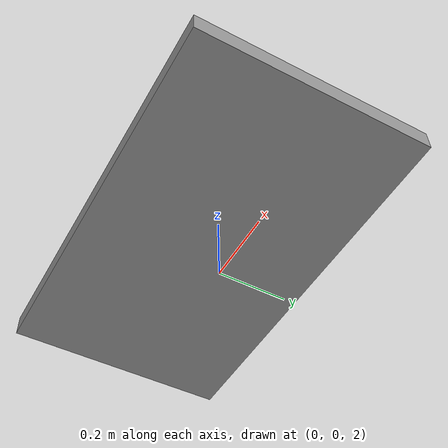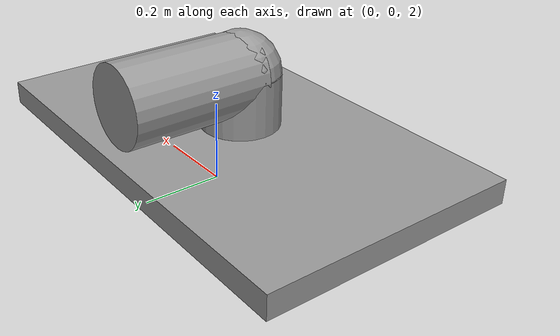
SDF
<?xml version='1.0'?>
<sdf version='1.7'>
  <model name='my_vacuum'>
    <link name='link'>
      <inertial>
        <mass>1</mass>
        <inertia>
          <ixx>0.166667</ixx>
          <ixy>0</ixy>
          <ixz>0</ixz>
          <iyy>0.166667</iyy>
          <iyz>0</iyz>
          <izz>0.166667</izz>
        </inertia>
        <pose>0 0 0 0 -0 0</pose>
      </inertial>
      <self_collide>0</self_collide>
      <enable_wind>0</enable_wind>
      <kinematic>0</kinematic>
      <pose>0 -0.048228 0 0 -0 0</pose>
      <gravity>1</gravity>
      <visual name='visual'>
        <geometry>
          <box>
            <size>1.1 0.65 0.06</size>
          </box>
        </geometry>
        <material>
          <script>
            <name>Gazebo/Grey</name>
            <uri>file://media/materials/scripts/gazebo.material</uri>
          </script>
          <shader type='pixel'>
            <normal_map>__default__</normal_map>
          </shader>
          <ambient>0.4 0.4 0.4 1</ambient>
          <diffuse>0.4 0.4 0.4 1</diffuse>
          <specular>0.01 0.01 0.01 1</specular>
          <emissive>0 0 0 1</emissive>
        </material>
        <pose>0 0 2.1 0 -0 0</pose>
        <transparency>0</transparency>
        <cast_shadows>1</cast_shadows>
      </visual>
      <collision name='collision'>
        <laser_retro>0</laser_retro>
        <max_contacts>10</max_contacts>
        <pose>0 0 2.1 0 -0 0</pose>
        <geometry>
          <box>
            <size>1.1 0.65 0.06</size>
          </box>
        </geometry>
        <surface>
          <friction>
            <ode>
              <mu>1</mu>
              <mu2>1</mu2>
              <fdir1>0 0 0</fdir1>
              <slip1>0</slip1>
              <slip2>0</slip2>
            </ode>
            <torsional>
              <coefficient>1</coefficient>
              <patch_radius>0</patch_radius>
              <surface_radius>0</surface_radius>
              <use_patch_radius>1</use_patch_radius>
              <ode>
                <slip>0</slip>
              </ode>
            </torsional>
          </friction>
          <bounce>
            <restitution_coefficient>0</restitution_coefficient>
            <threshold>1e+06</threshold>
          </bounce>
          <contact>
            <collide_without_contact>0</collide_without_contact>
            <collide_without_contact_bitmask>1</collide_without_contact_bitmask>
            <collide_bitmask>1</collide_bitmask>
            <ode>
              <soft_cfm>0</soft_cfm>
              <soft_erp>0.2</soft_erp>
              <kp>1e+13</kp>
              <kd>1</kd>
              <max_vel>0.01</max_vel>
              <min_depth>0</min_depth>
            </ode>
            <bullet>
              <split_impulse>1</split_impulse>
              <split_impulse_penetration_threshold>-0.01</split_impulse_penetration_threshold>
              <soft_cfm>0</soft_cfm>
              <soft_erp>0.2</soft_erp>
              <kp>1e+13</kp>
              <kd>1</kd>
            </bullet>
          </contact>
        </surface>
      </collision>
    </link>
    <link name='link_1'>
      <inertial>
        <mass>1</mass>
        <inertia>
          <ixx>0.145833</ixx>
          <ixy>0</ixy>
          <ixz>0</ixz>
          <iyy>0.145833</iyy>
          <iyz>0</iyz>
          <izz>0.125</izz>
        </inertia>
        <pose>0 0 0 0 -0 0</pose>
      </inertial>
      <pose>0.003402 -0.072362 2.63858 0 -0 0</pose>
      <gravity>1</gravity>
      <self_collide>0</self_collide>
      <kinematic>0</kinematic>
      <enable_wind>0</enable_wind>
      <visual name='visual'>
        <pose>0 0 -0.45 0 -0 0</pose>
        <geometry>
          <cylinder>
            <radius>0.1</radius>
            <length>0.15</length>
          </cylinder>
        </geometry>
        <material>
          <lighting>1</lighting>
          <script>
            <uri>file://media/materials/scripts/gazebo.material</uri>
            <name>Gazebo/Grey</name>
          </script>
          <shader type='pixel'>
            <normal_map>__default__</normal_map>
          </shader>
          <ambient>0.4 0.4 0.4 1</ambient>
          <diffuse>0.4 0.4 0.4 1</diffuse>
          <specular>0.01 0.01 0.01 1</specular>
          <emissive>0 0 0 1</emissive>
        </material>
        <transparency>0</transparency>
        <cast_shadows>1</cast_shadows>
      </visual>
      <collision name='collision'>
        <laser_retro>0</laser_retro>
        <max_contacts>10</max_contacts>
        <pose>0 0 -0.45 0 -0 0</pose>
        <geometry>
          <cylinder>
            <radius>0.1</radius>
            <length>0.15</length>
          </cylinder>
        </geometry>
        <surface>
          <friction>
            <ode>
              <mu>1</mu>
              <mu2>1</mu2>
              <fdir1>0 0 0</fdir1>
              <slip1>0</slip1>
              <slip2>0</slip2>
            </ode>
            <torsional>
              <coefficient>1</coefficient>
              <patch_radius>0</patch_radius>
              <surface_radius>0</surface_radius>
              <use_patch_radius>1</use_patch_radius>
              <ode>
                <slip>0</slip>
              </ode>
            </torsional>
          </friction>
          <bounce>
            <restitution_coefficient>0</restitution_coefficient>
            <threshold>1e+06</threshold>
          </bounce>
          <contact>
            <collide_without_contact>0</collide_without_contact>
            <collide_without_contact_bitmask>1</collide_without_contact_bitmask>
            <collide_bitmask>1</collide_bitmask>
            <ode>
              <soft_cfm>0</soft_cfm>
              <soft_erp>0.2</soft_erp>
              <kp>1e+13</kp>
              <kd>1</kd>
              <max_vel>0.01</max_vel>
              <min_depth>0</min_depth>
            </ode>
            <bullet>
              <split_impulse>1</split_impulse>
              <split_impulse_penetration_threshold>-0.01</split_impulse_penetration_threshold>
              <soft_cfm>0</soft_cfm>
              <soft_erp>0.2</soft_erp>
              <kp>1e+13</kp>
              <kd>1</kd>
            </bullet>
          </contact>
        </surface>
      </collision>
    </link>
    <link name='link_1_clone'>
      <inertial>
        <mass>1</mass>
        <inertia>
          <ixx>0.145833</ixx>
          <ixy>0</ixy>
          <ixz>0</ixz>
          <iyy>0.145833</iyy>
          <iyz>0</iyz>
          <izz>0.125</izz>
        </inertia>
        <pose>0 0 0 0 -0 0</pose>
      </inertial>
      <pose>0.004004 0.087852 2.71388 0 -0 0</pose>
      <gravity>1</gravity>
      <self_collide>0</self_collide>
      <kinematic>0</kinematic>
      <enable_wind>0</enable_wind>
      <visual name='visual'>
        <pose>0 0 -0.45 1.5707 -0 0</pose>
        <geometry>
          <cylinder>
            <radius>0.1</radius>
            <length>0.35</length>
          </cylinder>
        </geometry>
        <material>
          <lighting>1</lighting>
          <script>
            <uri>file://media/materials/scripts/gazebo.material</uri>
            <name>Gazebo/Grey</name>
          </script>
          <shader type='pixel'>
            <normal_map>__default__</normal_map>
          </shader>
          <ambient>0.4 0.4 0.4 1</ambient>
          <diffuse>0.4 0.4 0.4 1</diffuse>
          <specular>0.01 0.01 0.01 1</specular>
          <emissive>0 0 0 1</emissive>
        </material>
        <transparency>0</transparency>
        <cast_shadows>1</cast_shadows>
      </visual>
      <collision name='collision'>
        <laser_retro>0</laser_retro>
        <max_contacts>10</max_contacts>
        <pose>0 0 -0.45 1.5707 -0 0</pose>
        <geometry>
          <cylinder>
            <radius>0.1</radius>
            <length>0.35</length>
          </cylinder>
        </geometry>
        <surface>
          <friction>
            <ode>
              <mu>1</mu>
              <mu2>1</mu2>
              <fdir1>0 0 0</fdir1>
              <slip1>0</slip1>
              <slip2>0</slip2>
            </ode>
            <torsional>
              <coefficient>1</coefficient>
              <patch_radius>0</patch_radius>
              <surface_radius>0</surface_radius>
              <use_patch_radius>1</use_patch_radius>
              <ode>
                <slip>0</slip>
              </ode>
            </torsional>
          </friction>
          <bounce>
            <restitution_coefficient>0</restitution_coefficient>
            <threshold>1e+06</threshold>
          </bounce>
          <contact>
            <collide_without_contact>0</collide_without_contact>
            <collide_without_contact_bitmask>1</collide_without_contact_bitmask>
            <collide_bitmask>1</collide_bitmask>
            <ode>
              <soft_cfm>0</soft_cfm>
              <soft_erp>0.2</soft_erp>
              <kp>1e+13</kp>
              <kd>1</kd>
              <max_vel>0.01</max_vel>
              <min_depth>0</min_depth>
            </ode>
            <bullet>
              <split_impulse>1</split_impulse>
              <split_impulse_penetration_threshold>-0.01</split_impulse_penetration_threshold>
              <soft_cfm>0</soft_cfm>
              <soft_erp>0.2</soft_erp>
              <kp>1e+13</kp>
              <kd>1</kd>
            </bullet>
          </contact>
        </surface>
      </collision>
    </link>
    <link name='link_3'>
      <inertial>
        <mass>1</mass>
        <inertia>
          <ixx>0.1</ixx>
          <ixy>0</ixy>
          <ixz>0</ixz>
          <iyy>0.1</iyy>
          <iyz>0</iyz>
          <izz>0.1</izz>
        </inertia>
        <pose>0 0 0 0 -0 0</pose>
      </inertial>
      <pose>0.004236 -0.071859 2.71646 0 -0 0</pose>
      <gravity>1</gravity>
      <self_collide>0</self_collide>
      <kinematic>0</kinematic>
      <enable_wind>0</enable_wind>
      <visual name='visual'>
        <pose>0 0 -0.45 0 -0 0</pose>
        <geometry>
          <sphere>
            <radius>0.1</radius>
          </sphere>
        </geometry>
        <material>
          <lighting>1</lighting>
          <script>
            <uri>file://media/materials/scripts/gazebo.material</uri>
            <name>Gazebo/Grey</name>
          </script>
          <shader type='pixel'>
            <normal_map>__default__</normal_map>
          </shader>
          <ambient>0.4 0.4 0.4 1</ambient>
          <diffuse>0.4 0.4 0.4 1</diffuse>
          <specular>0.01 0.01 0.01 1</specular>
          <emissive>0 0 0 1</emissive>
        </material>
        <transparency>0</transparency>
        <cast_shadows>1</cast_shadows>
      </visual>
      <collision name='collision'>
        <laser_retro>0</laser_retro>
        <max_contacts>10</max_contacts>
        <pose>0 0 -0.45 0 -0 0</pose>
        <geometry>
          <sphere>
            <radius>0.1</radius>
          </sphere>
        </geometry>
        <surface>
          <friction>
            <ode>
              <mu>1</mu>
              <mu2>1</mu2>
              <fdir1>0 0 0</fdir1>
              <slip1>0</slip1>
              <slip2>0</slip2>
            </ode>
            <torsional>
              <coefficient>1</coefficient>
              <patch_radius>0</patch_radius>
              <surface_radius>0</surface_radius>
              <use_patch_radius>1</use_patch_radius>
              <ode>
                <slip>0</slip>
              </ode>
            </torsional>
          </friction>
          <bounce>
            <restitution_coefficient>0</restitution_coefficient>
            <threshold>1e+06</threshold>
          </bounce>
          <contact>
            <collide_without_contact>0</collide_without_contact>
            <collide_without_contact_bitmask>1</collide_without_contact_bitmask>
            <collide_bitmask>1</collide_bitmask>
            <ode>
              <soft_cfm>0</soft_cfm>
              <soft_erp>0.2</soft_erp>
              <kp>1e+13</kp>
              <kd>1</kd>
              <max_vel>0.01</max_vel>
              <min_depth>0</min_depth>
            </ode>
            <bullet>
              <split_impulse>1</split_impulse>
              <split_impulse_penetration_threshold>-0.01</split_impulse_penetration_threshold>
              <soft_cfm>0</soft_cfm>
              <soft_erp>0.2</soft_erp>
              <kp>1e+13</kp>
              <kd>1</kd>
            </bullet>
          </contact>
        </surface>
      </collision>
    </link>
    <static>1</static>
    <allow_auto_disable>1</allow_auto_disable>
  </model>
</sdf>
